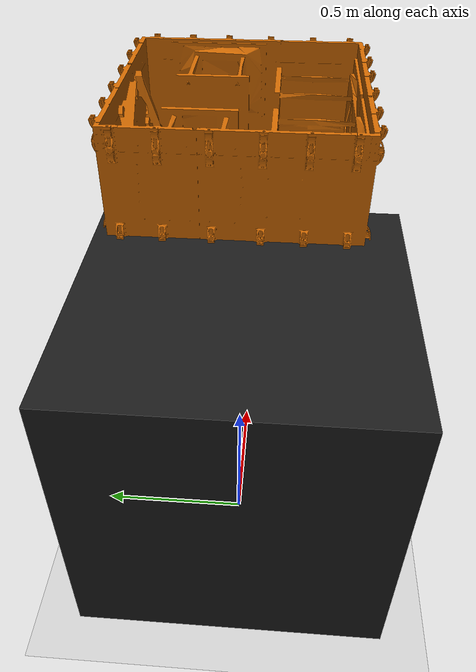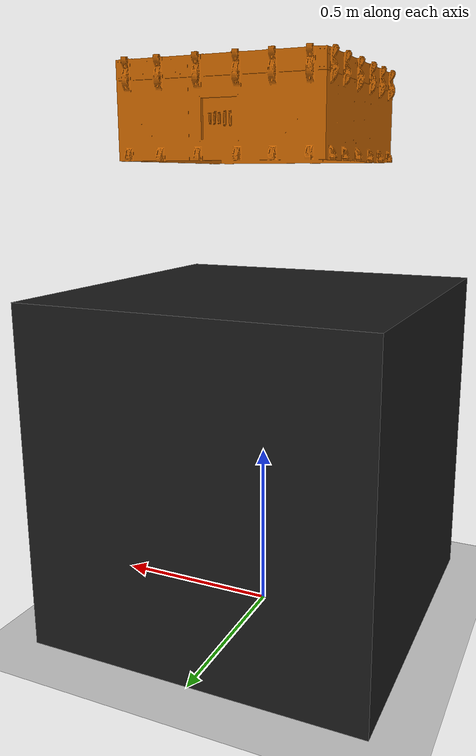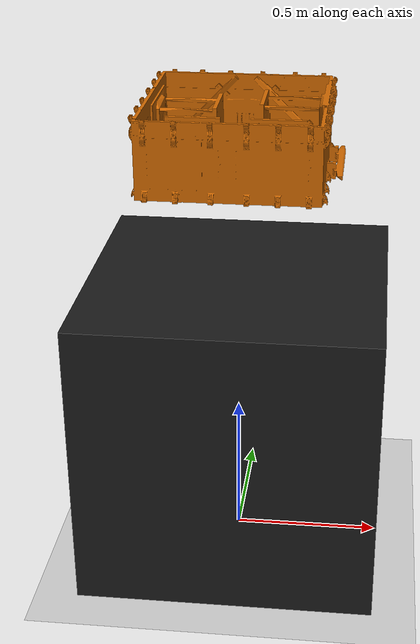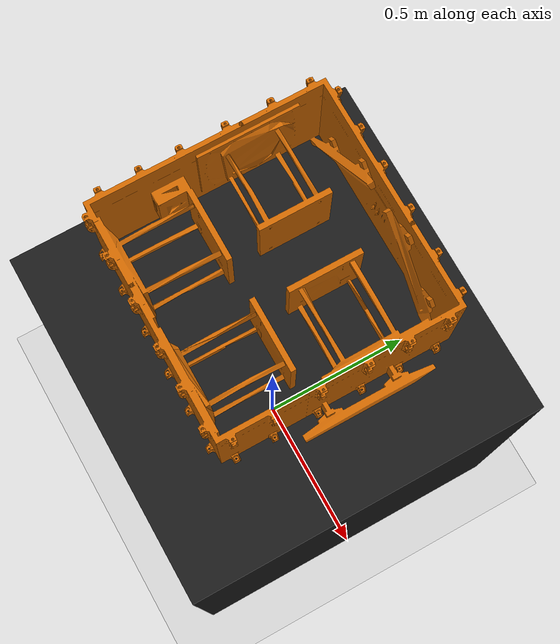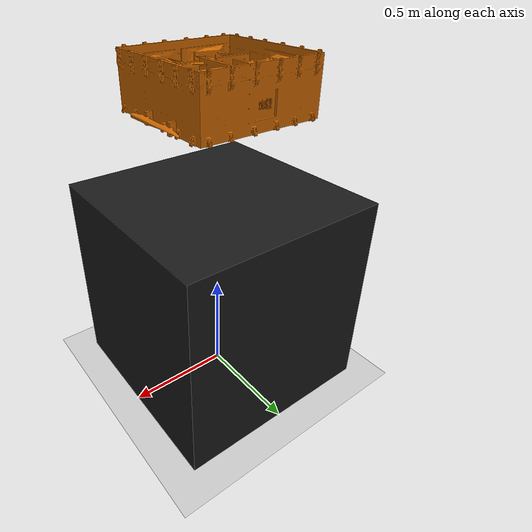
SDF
<?xml version="1.0" ?>
<sdf version="1.6">
  <world name="simple_world">

    <!-- Параметры гравитации -->
    <gravity>0 0 -9.8</gravity>

    <!-- Добавим плоскость (землю) -->
    <model name="ground_plane">
      <static>true</static>
      <link name="link">
        <collision name="collision">
          <geometry>
            <plane>
              <normal>0 0 1</normal>
              <size>20 20</size>
            </plane>
          </geometry>
        </collision>
        <visual name="visual">
          <geometry>
            <plane>
              <normal>0 0 1</normal>
              <size>20 20</size>
            </plane>
          </geometry>
          <material>
            <ambient>0.8 0.8 0.8 1.0</ambient>  <!-- Цвет освещения при тенях -->
            <diffuse>0.8 0.8 0.8 1.0</diffuse>  <!-- Основной цвет плоскости -->
            <specular>0.1 0.1 0.1 1.0</specular> <!-- Блики -->
            <emissive>0 0 0 1</emissive>         <!-- Самосвечение -->
          </material>
        </visual>
      </link>
    </model>

    <!-- Освещение -->
    <light name="sun" type="directional">
      <cast_shadows>true</cast_shadows>
      <pose>0 0 10 0 -0 0</pose>
      <diffuse>1 1 1 1</diffuse>
      <specular>0.1 0.1 0.1 1</specular>
      <attenuation>
        <range>1000</range>
        <constant>0.9</constant>
        <linear>0.01</linear>
        <quadratic>0.001</quadratic>
      </attenuation>
      <direction>-0.5 0.5 -1</direction>
    </light>

    <model name="work_table">
      <static>true</static> <!-- Куб не будет двигаться -->
      <pose>0 0 0.5 0 0 0</pose> <!-- Центр куба (1x1x1 м) будет находиться на высоте 0.5 м -->
      <link name="link">
        <collision name="collision">
          <geometry>
            <box>
              <size>1 1 1</size> <!-- Размер куба 1x1x1 метр -->
            </box>
          </geometry>
        </collision>
        <visual name="visual">
          <geometry>
            <box>
              <size>1 1 1</size>
            </box>
          </geometry>
          <material>
              <ambient>0.1 0.1 0.1 1.0</ambient>  <!-- Оранжевый цвет -->
              <diffuse>0.1 0.1 0.1 1.0</diffuse>  <!-- Оранжевый цвет -->
            <specular>0.1 0.1 0.1 1.0</specular> <!-- Блики -->
            <emissive>0 0 0 1</emissive>         <!-- Самосвечение -->
          </material>
        </visual>
        </link>
    </model>

<model name="aocs_assembly">
  <static>false</static> <!-- The model can move -->
  <pose>0 0 1.50 0 0 0</pose> <!-- Position of the model -->

  <link name="link">
    <!-- Collision with offset -->
    <collision name="collision">
      <pose>0 0 0 0 0 0</pose> <!-- Optional: Offset for collision (position and rotation) -->
      <geometry>
        <box>
          <size>0.607 0.607 0.25</size> <!-- Box for collision -->
        </box>
      </geometry>
    </collision>

    <!-- Visual with offset -->
    <visual name="visual">
      <pose>0 0 -0.25 0 0 0</pose> <!-- Optional: Offset for visual (position and rotation) -->
      <geometry>
        <mesh>
          <uri>../models/AOCS_ASSEMBLY_simple.stl</uri>
          <scale>0.001 0.001 0.001</scale>
        </mesh>
      </geometry>
      <material>
        <ambient>0.8 0.4 0.0 1.0</ambient>
        <diffuse>0.8 0.4 0.0 1.0</diffuse>
        <specular>0.1 0.1 0.1 1.0</specular>
        <emissive>0 0 0 1.0</emissive>
      </material>
    </visual>
  </link>
</model>

  </world>
</sdf>
